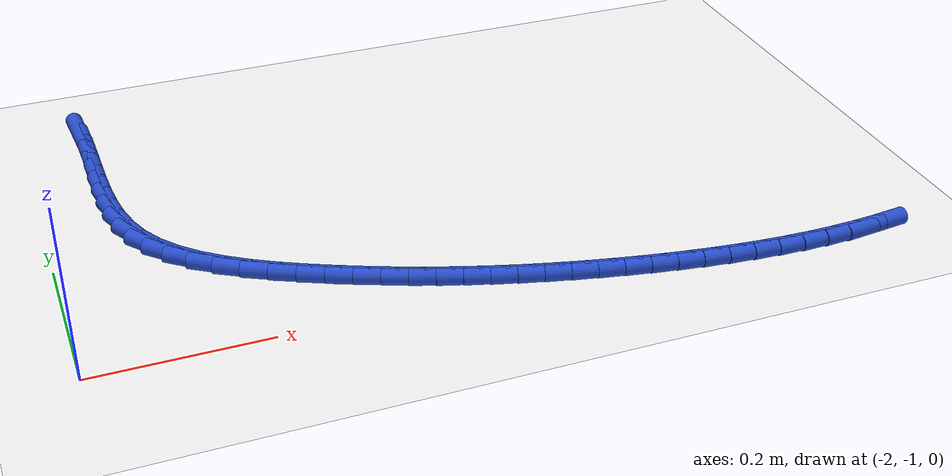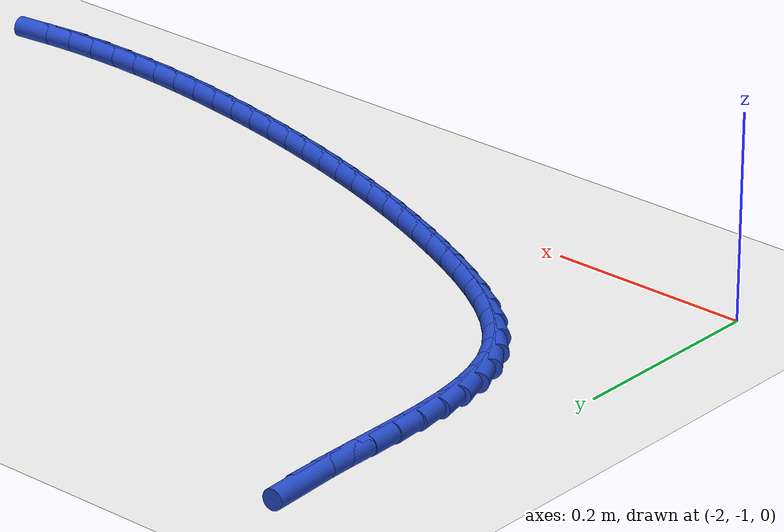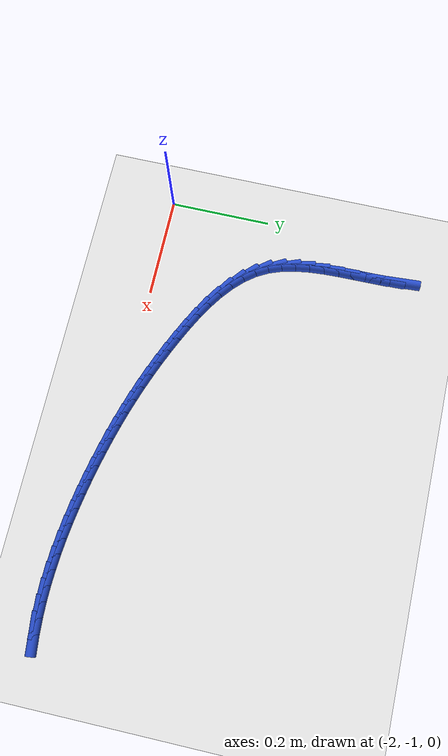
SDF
<sdf version="1.6">
 <world name="default">
  <model name="ground_plane">
   <static>1</static>
   <link name="link">
    <collision name="collision">
     <geometry><plane><normal>0 0 1</normal><size>100 100</size></plane></geometry>
     <surface><friction><ode><mu>100</mu><mu2>50</mu2></ode></friction></surface>
    </collision>
    <visual name="visual">
     <cast_shadows>0</cast_shadows>
     <geometry><plane><normal>0 0 1</normal><size>100 100</size></plane></geometry>
     <material>
      <script><uri>file://media/materials/scripts/gazebo.material</uri><name>Gazebo/WhiteGlow</name></script>
     </material>
    </visual>
   </link>
  </model>
  <model name="line">
   <link name="link_134">
    <pose>-1.9268076011994597 -0.5132067374709511 0.01 0 1.57 -1.508256480464013</pose>
    <collision name="collision">
     <geometry><cylinder><radius>0.01</radius><length>0.08</length></cylinder></geometry>
    </collision>
    <visual name="visual">
     <material>
      <script><name>Gazebo/Blue</name><uri>file://media/materials/scripts/gazebo.material</uri></script>
     </material>
     <geometry><cylinder><radius>0.01</radius><length>0.08</length></cylinder></geometry>
    </visual>
   </link>
   <link name="link_135">
    <pose>-1.9249199990947428 -0.5433497682461979 0.01 0 1.57 -1.545486651169992</pose>
    <collision name="collision">
     <geometry><cylinder><radius>0.01</radius><length>0.08</length></cylinder></geometry>
    </collision>
    <visual name="visual">
     <material>
      <script><name>Gazebo/Blue</name><uri>file://media/materials/scripts/gazebo.material</uri></script>
     </material>
     <geometry><cylinder><radius>0.01</radius><length>0.08</length></cylinder></geometry>
    </visual>
   </link>
   <link name="link_136">
    <pose>-1.9241424949231298 -0.5740628503991178 0.01 0 1.57 -1.5624064226498855</pose>
    <collision name="collision">
     <geometry><cylinder><radius>0.01</radius><length>0.08</length></cylinder></geometry>
    </collision>
    <visual name="visual">
     <material>
      <script><name>Gazebo/Blue</name><uri>file://media/materials/scripts/gazebo.material</uri></script>
     </material>
     <geometry><cylinder><radius>0.01</radius><length>0.08</length></cylinder></geometry>
    </visual>
   </link>
   <link name="link_137">
    <pose>-1.923882588362695 -0.605040613386292 0.01 0 1.57 -1.5596145141386228</pose>
    <collision name="collision">
     <geometry><cylinder><radius>0.01</radius><length>0.08</length></cylinder></geometry>
    </collision>
    <visual name="visual">
     <material>
      <script><name>Gazebo/Blue</name><uri>file://media/materials/scripts/gazebo.material</uri></script>
     </material>
     <geometry><cylinder><radius>0.01</radius><length>0.08</length></cylinder></geometry>
    </visual>
   </link>
   <link name="link_138">
    <pose>-1.9235367147107887 -0.6359711295037308 0.01 0 1.57 -1.536940768941075</pose>
    <collision name="collision">
     <geometry><cylinder><radius>0.01</radius><length>0.08</length></cylinder></geometry>
    </collision>
    <visual name="visual">
     <material>
      <script><name>Gazebo/Blue</name><uri>file://media/materials/scripts/gazebo.material</uri></script>
     </material>
     <geometry><cylinder><radius>0.01</radius><length>0.08</length></cylinder></geometry>
    </visual>
   </link>
   <link name="link_139">
    <pose>-1.9225013092647623 -0.6665424710474439 0.01 0 1.57 -1.493077489375696</pose>
    <collision name="collision">
     <geometry><cylinder><radius>0.01</radius><length>0.08</length></cylinder></geometry>
    </collision>
    <visual name="visual">
     <material>
      <script><name>Gazebo/Blue</name><uri>file://media/materials/scripts/gazebo.material</uri></script>
     </material>
     <geometry><cylinder><radius>0.01</radius><length>0.08</length></cylinder></geometry>
    </visual>
   </link>
   <link name="link_140">
    <pose>-1.9201728073219666 -0.6964427103134426 0.01 0 1.57 -1.4257105743031544</pose>
    <collision name="collision">
     <geometry><cylinder><radius>0.01</radius><length>0.08</length></cylinder></geometry>
    </collision>
    <visual name="visual">
     <material>
      <script><name>Gazebo/Blue</name><uri>file://media/materials/scripts/gazebo.material</uri></script>
     </material>
     <geometry><cylinder><radius>0.01</radius><length>0.08</length></cylinder></geometry>
    </visual>
   </link>
   <link name="link_141">
    <pose>-1.9159476441797532 -0.7253599195977352 0.01 0 1.57 -1.3319661093190651</pose>
    <collision name="collision">
     <geometry><cylinder><radius>0.01</radius><length>0.08</length></cylinder></geometry>
    </collision>
    <visual name="visual">
     <material>
      <script><name>Gazebo/Blue</name><uri>file://media/materials/scripts/gazebo.material</uri></script>
     </material>
     <geometry><cylinder><radius>0.01</radius><length>0.08</length></cylinder></geometry>
    </visual>
   </link>
   <link name="link_142">
    <pose>-1.9092222551354716 -0.7529821711963328 0.01 0 1.57 -1.2095538068098315</pose>
    <collision name="collision">
     <geometry><cylinder><radius>0.01</radius><length>0.08</length></cylinder></geometry>
    </collision>
    <visual name="visual">
     <material>
      <script><name>Gazebo/Blue</name><uri>file://media/materials/scripts/gazebo.material</uri></script>
     </material>
     <geometry><cylinder><radius>0.01</radius><length>0.08</length></cylinder></geometry>
    </visual>
   </link>
   <link name="link_143">
    <pose>-1.8993930754864747 -0.7789975374052458 0.01 0 1.57 -1.0597149811474615</pose>
    <collision name="collision">
     <geometry><cylinder><radius>0.01</radius><length>0.08</length></cylinder></geometry>
    </collision>
    <visual name="visual">
     <material>
      <script><name>Gazebo/Blue</name><uri>file://media/materials/scripts/gazebo.material</uri></script>
     </material>
     <geometry><cylinder><radius>0.01</radius><length>0.08</length></cylinder></geometry>
    </visual>
   </link>
   <link name="link_144">
    <pose>-1.8858758225460182 -0.8031019471592948 0.01 0 1.57 -0.9079236911270778</pose>
    <collision name="collision">
     <geometry><cylinder><radius>0.01</radius><length>0.08</length></cylinder></geometry>
    </collision>
    <visual name="visual">
     <material>
      <script><name>Gazebo/Blue</name><uri>file://media/materials/scripts/gazebo.material</uri></script>
     </material>
     <geometry><cylinder><radius>0.01</radius><length>0.08</length></cylinder></geometry>
    </visual>
   </link>
   <link name="link_145">
    <pose>-1.8686174063887495 -0.8252077688820482 0.01 0 1.57 -0.7802502395648747</pose>
    <collision name="collision">
     <geometry><cylinder><radius>0.01</radius><length>0.08</length></cylinder></geometry>
    </collision>
    <visual name="visual">
     <material>
      <script><name>Gazebo/Blue</name><uri>file://media/materials/scripts/gazebo.material</uri></script>
     </material>
     <geometry><cylinder><radius>0.01</radius><length>0.08</length></cylinder></geometry>
    </visual>
   </link>
   <link name="link_146">
    <pose>-1.848149772057825 -0.8454657489997294 0.01 0 1.57 -0.6768814323675039</pose>
    <collision name="collision">
     <geometry><cylinder><radius>0.01</radius><length>0.08</length></cylinder></geometry>
    </collision>
    <visual name="visual">
     <material>
      <script><name>Gazebo/Blue</name><uri>file://media/materials/scripts/gazebo.material</uri></script>
     </material>
     <geometry><cylinder><radius>0.01</radius><length>0.08</length></cylinder></geometry>
    </visual>
   </link>
   <link name="link_147">
    <pose>-1.8250349465291622 -0.864038891105114 0.01 0 1.57 -0.5948751096899629</pose>
    <collision name="collision">
     <geometry><cylinder><radius>0.01</radius><length>0.08</length></cylinder></geometry>
    </collision>
    <visual name="visual">
     <material>
      <script><name>Gazebo/Blue</name><uri>file://media/materials/scripts/gazebo.material</uri></script>
     </material>
     <geometry><cylinder><radius>0.01</radius><length>0.08</length></cylinder></geometry>
    </visual>
   </link>
   <link name="link_148">
    <pose>-1.7998349567786769 -0.881090198790977 0.01 0 1.57 -0.5309728404838022</pose>
    <collision name="collision">
     <geometry><cylinder><radius>0.01</radius><length>0.08</length></cylinder></geometry>
    </collision>
    <visual name="visual">
     <material>
      <script><name>Gazebo/Blue</name><uri>file://media/materials/scripts/gazebo.material</uri></script>
     </material>
     <geometry><cylinder><radius>0.01</radius><length>0.08</length></cylinder></geometry>
    </visual>
   </link>
   <link name="link_149">
    <pose>-1.773111829782289 -0.8967826756500936 0.01 0 1.57 -0.4823824046387954</pose>
    <collision name="collision">
     <geometry><cylinder><radius>0.01</radius><length>0.08</length></cylinder></geometry>
    </collision>
    <visual name="visual">
     <material>
      <script><name>Gazebo/Blue</name><uri>file://media/materials/scripts/gazebo.material</uri></script>
     </material>
     <geometry><cylinder><radius>0.01</radius><length>0.08</length></cylinder></geometry>
    </visual>
   </link>
   <link name="link_150">
    <pose>-1.7454275925159137 -0.9112793252752381 0.01 0 1.57 -0.4470519642733291</pose>
    <collision name="collision">
     <geometry><cylinder><radius>0.01</radius><length>0.08</length></cylinder></geometry>
    </collision>
    <visual name="visual">
     <material>
      <script><name>Gazebo/Blue</name><uri>file://media/materials/scripts/gazebo.material</uri></script>
     </material>
     <geometry><cylinder><radius>0.01</radius><length>0.08</length></cylinder></geometry>
    </visual>
   </link>
   <link name="link_151">
    <pose>-1.7173442719554697 -0.9247431512591868 0.01 0 1.57 -0.4217746998890548</pose>
    <collision name="collision">
     <geometry><cylinder><radius>0.01</radius><length>0.08</length></cylinder></geometry>
    </collision>
    <visual name="visual">
     <material>
      <script><name>Gazebo/Blue</name><uri>file://media/materials/scripts/gazebo.material</uri></script>
     </material>
     <geometry><cylinder><radius>0.01</radius><length>0.08</length></cylinder></geometry>
    </visual>
   </link>
   <link name="link_152">
    <pose>-1.6893232983972766 -0.937316242231834 0.01 0 1.57 -0.39833026668714633</pose>
    <collision name="collision">
     <geometry><cylinder><radius>0.01</radius><length>0.08</length></cylinder></geometry>
    </collision>
    <visual name="visual">
     <material>
      <script><name>Gazebo/Blue</name><uri>file://media/materials/scripts/gazebo.material</uri></script>
     </material>
     <geometry><cylinder><radius>0.01</radius><length>0.08</length></cylinder></geometry>
    </visual>
   </link>
   <link name="link_153">
    <pose>-1.6614238686432192 -0.9490570588282061 0.01 0 1.57 -0.37486689891085195</pose>
    <collision name="collision">
     <geometry><cylinder><radius>0.01</radius><length>0.08</length></cylinder></geometry>
    </collision>
    <visual name="visual">
     <material>
      <script><name>Gazebo/Blue</name><uri>file://media/materials/scripts/gazebo.material</uri></script>
     </material>
     <geometry><cylinder><radius>0.01</radius><length>0.08</length></cylinder></geometry>
    </visual>
   </link>
   <link name="link_154">
    <pose>-1.6336046594129774 -0.9600031626457418 0.01 0 1.57 -0.35153485040216015</pose>
    <collision name="collision">
     <geometry><cylinder><radius>0.01</radius><length>0.08</length></cylinder></geometry>
    </collision>
    <visual name="visual">
     <material>
      <script><name>Gazebo/Blue</name><uri>file://media/materials/scripts/gazebo.material</uri></script>
     </material>
     <geometry><cylinder><radius>0.01</radius><length>0.08</length></cylinder></geometry>
    </visual>
   </link>
   <link name="link_155">
    <pose>-1.6058243474262284 -0.9701921152818799 0.01 0 1.57 -0.32848787388336054</pose>
    <collision name="collision">
     <geometry><cylinder><radius>0.01</radius><length>0.08</length></cylinder></geometry>
    </collision>
    <visual name="visual">
     <material>
      <script><name>Gazebo/Blue</name><uri>file://media/materials/scripts/gazebo.material</uri></script>
     </material>
     <geometry><cylinder><radius>0.01</radius><length>0.08</length></cylinder></geometry>
    </visual>
   </link>
   <link name="link_156">
    <pose>-1.57804160940265 -0.9796614783340589 0.01 0 1.57 -0.3058796319525007</pose>
    <collision name="collision">
     <geometry><cylinder><radius>0.01</radius><length>0.08</length></cylinder></geometry>
    </collision>
    <visual name="visual">
     <material>
      <script><name>Gazebo/Blue</name><uri>file://media/materials/scripts/gazebo.material</uri></script>
     </material>
     <geometry><cylinder><radius>0.01</radius><length>0.08</length></cylinder></geometry>
    </visual>
   </link>
   <link name="link_157">
    <pose>-1.5502151220619196 -0.9884488133997181 0.01 0 1.57 -0.2838600469614054</pose>
    <collision name="collision">
     <geometry><cylinder><radius>0.01</radius><length>0.08</length></cylinder></geometry>
    </collision>
    <visual name="visual">
     <material>
      <script><name>Gazebo/Blue</name><uri>file://media/materials/scripts/gazebo.material</uri></script>
     </material>
     <geometry><cylinder><radius>0.01</radius><length>0.08</length></cylinder></geometry>
    </visual>
   </link>
   <link name="link_158">
    <pose>-1.522303562123717 -0.996591682076296 0.01 0 1.57 -0.26257179019557647</pose>
    <collision name="collision">
     <geometry><cylinder><radius>0.01</radius><length>0.08</length></cylinder></geometry>
    </collision>
    <visual name="visual">
     <material>
      <script><name>Gazebo/Blue</name><uri>file://media/materials/scripts/gazebo.material</uri></script>
     </material>
     <geometry><cylinder><radius>0.01</radius><length>0.08</length></cylinder></geometry>
    </visual>
   </link>
   <link name="link_159">
    <pose>-1.4942656063077193 -1.004127645961231 0.01 0 1.57 -0.24214709765003564</pose>
    <collision name="collision">
     <geometry><cylinder><radius>0.01</radius><length>0.08</length></cylinder></geometry>
    </collision>
    <visual name="visual">
     <material>
      <script><name>Gazebo/Blue</name><uri>file://media/materials/scripts/gazebo.material</uri></script>
     </material>
     <geometry><cylinder><radius>0.01</radius><length>0.08</length></cylinder></geometry>
    </visual>
   </link>
   <link name="link_160">
    <pose>-1.4660599313336053 -1.0110942666519622 0.01 0 1.57 -0.22270506842421925</pose>
    <collision name="collision">
     <geometry><cylinder><radius>0.01</radius><length>0.08</length></cylinder></geometry>
    </collision>
    <visual name="visual">
     <material>
      <script><name>Gazebo/Blue</name><uri>file://media/materials/scripts/gazebo.material</uri></script>
     </material>
     <geometry><cylinder><radius>0.01</radius><length>0.08</length></cylinder></geometry>
    </visual>
   </link>
   <link name="link_161">
    <pose>-1.4376452139210523 -1.0175291057459286 0.01 0 1.57 -0.20432008322359246</pose>
    <collision name="collision">
     <geometry><cylinder><radius>0.01</radius><length>0.08</length></cylinder></geometry>
    </collision>
    <visual name="visual">
     <material>
      <script><name>Gazebo/Blue</name><uri>file://media/materials/scripts/gazebo.material</uri></script>
     </material>
     <geometry><cylinder><radius>0.01</radius><length>0.08</length></cylinder></geometry>
    </visual>
   </link>
   <link name="link_162">
    <pose>-1.4089809497976975 -1.023468673977266 0.01 0 1.57 -0.1858504762011381</pose>
    <collision name="collision">
     <geometry><cylinder><radius>0.01</radius><length>0.08</length></cylinder></geometry>
    </collision>
    <visual name="visual">
     <material>
      <script><name>Gazebo/Blue</name><uri>file://media/materials/scripts/gazebo.material</uri></script>
     </material>
     <geometry><cylinder><radius>0.01</radius><length>0.08</length></cylinder></geometry>
    </visual>
   </link>
   <link name="link_163">
    <pose>-1.3800602495962122 -1.0289063510338954 0.01 0 1.57 -0.16565721217782173</pose>
    <collision name="collision">
     <geometry><cylinder><radius>0.01</radius><length>0.08</length></cylinder></geometry>
    </collision>
    <visual name="visual">
     <material>
      <script><name>Gazebo/Blue</name><uri>file://media/materials/scripts/gazebo.material</uri></script>
     </material>
     <geometry><cylinder><radius>0.01</radius><length>0.08</length></cylinder></geometry>
    </visual>
   </link>
   <link name="link_164">
    <pose>-1.3509209470417485 -1.033778132721001 0.01 0 1.57 -0.14356030794787925</pose>
    <collision name="collision">
     <geometry><cylinder><radius>0.01</radius><length>0.08</length></cylinder></geometry>
    </collision>
    <visual name="visual">
     <material>
      <script><name>Gazebo/Blue</name><uri>file://media/materials/scripts/gazebo.material</uri></script>
     </material>
     <geometry><cylinder><radius>0.01</radius><length>0.08</length></cylinder></geometry>
    </visual>
   </link>
   <link name="link_165">
    <pose>-1.3216039734345246 -1.0380160403671723 0.01 0 1.57 -0.11948278934587582</pose>
    <collision name="collision">
     <geometry><cylinder><radius>0.01</radius><length>0.08</length></cylinder></geometry>
    </collision>
    <visual name="visual">
     <material>
      <script><name>Gazebo/Blue</name><uri>file://media/materials/scripts/gazebo.material</uri></script>
     </material>
     <geometry><cylinder><radius>0.01</radius><length>0.08</length></cylinder></geometry>
    </visual>
   </link>
   <link name="link_166">
    <pose>-1.2921502600747576 -1.041552095300998 0.01 0 1.57 -0.09334111275560518</pose>
    <collision name="collision">
     <geometry><cylinder><radius>0.01</radius><length>0.08</length></cylinder></geometry>
    </collision>
    <visual name="visual">
     <material>
      <script><name>Gazebo/Blue</name><uri>file://media/materials/scripts/gazebo.material</uri></script>
     </material>
     <geometry><cylinder><radius>0.01</radius><length>0.08</length></cylinder></geometry>
    </visual>
   </link>
   <link name="link_167">
    <pose>-1.2626007382626674 -1.0443183188510674 0.01 0 1.57 -0.06504752580136787</pose>
    <collision name="collision">
     <geometry><cylinder><radius>0.01</radius><length>0.08</length></cylinder></geometry>
    </collision>
    <visual name="visual">
     <material>
      <script><name>Gazebo/Blue</name><uri>file://media/materials/scripts/gazebo.material</uri></script>
     </material>
     <geometry><cylinder><radius>0.01</radius><length>0.08</length></cylinder></geometry>
    </visual>
   </link>
   <link name="link_168">
    <pose>-1.2329963392984706 -1.0462467323459692 0.01 0 1.57 -0.034513025951121684</pose>
    <collision name="collision">
     <geometry><cylinder><radius>0.01</radius><length>0.08</length></cylinder></geometry>
    </collision>
    <visual name="visual">
     <material>
      <script><name>Gazebo/Blue</name><uri>file://media/materials/scripts/gazebo.material</uri></script>
     </material>
     <geometry><cylinder><radius>0.01</radius><length>0.08</length></cylinder></geometry>
    </visual>
   </link>
   <link name="link_169">
    <pose>-1.2033779944823852 -1.0472693571142926 0.01 0 1.57 -0.0016510673041906813</pose>
    <collision name="collision">
     <geometry><cylinder><radius>0.01</radius><length>0.08</length></cylinder></geometry>
    </collision>
    <visual name="visual">
     <material>
      <script><name>Gazebo/Blue</name><uri>file://media/materials/scripts/gazebo.material</uri></script>
     </material>
     <geometry><cylinder><radius>0.01</radius><length>0.08</length></cylinder></geometry>
    </visual>
   </link>
   <link name="link_170">
    <pose>-1.1737866351146287 -1.0473182144846267 0.01 0 1.57 0.033617848796726406</pose>
    <collision name="collision">
     <geometry><cylinder><radius>0.01</radius><length>0.08</length></cylinder></geometry>
    </collision>
    <visual name="visual">
     <material>
      <script><name>Gazebo/Blue</name><uri>file://media/materials/scripts/gazebo.material</uri></script>
     </material>
     <geometry><cylinder><radius>0.01</radius><length>0.08</length></cylinder></geometry>
    </visual>
   </link>
   <link name="link_171">
    <pose>-1.1442631924954205 -1.04632532578556 0.01 0 1.57 0.07136060133806904</pose>
    <collision name="collision">
     <geometry><cylinder><radius>0.01</radius><length>0.08</length></cylinder></geometry>
    </collision>
    <visual name="visual">
     <material>
      <script><name>Gazebo/Blue</name><uri>file://media/materials/scripts/gazebo.material</uri></script>
     </material>
     <geometry><cylinder><radius>0.01</radius><length>0.08</length></cylinder></geometry>
    </visual>
   </link>
   <link name="link_172">
    <pose>-1.1148485979249776 -1.0442227123456822 0.01 0 1.57 0.11152322722598217</pose>
    <collision name="collision">
     <geometry><cylinder><radius>0.01</radius><length>0.08</length></cylinder></geometry>
    </collision>
    <visual name="visual">
     <material>
      <script><name>Gazebo/Blue</name><uri>file://media/materials/scripts/gazebo.material</uri></script>
     </material>
     <geometry><cylinder><radius>0.01</radius><length>0.08</length></cylinder></geometry>
    </visual>
   </link>
  </model>
 </world>
</sdf>
